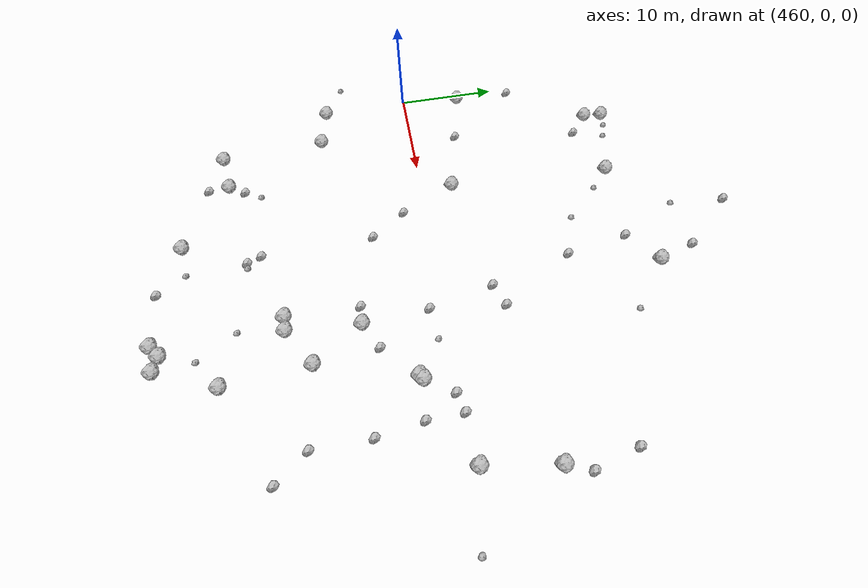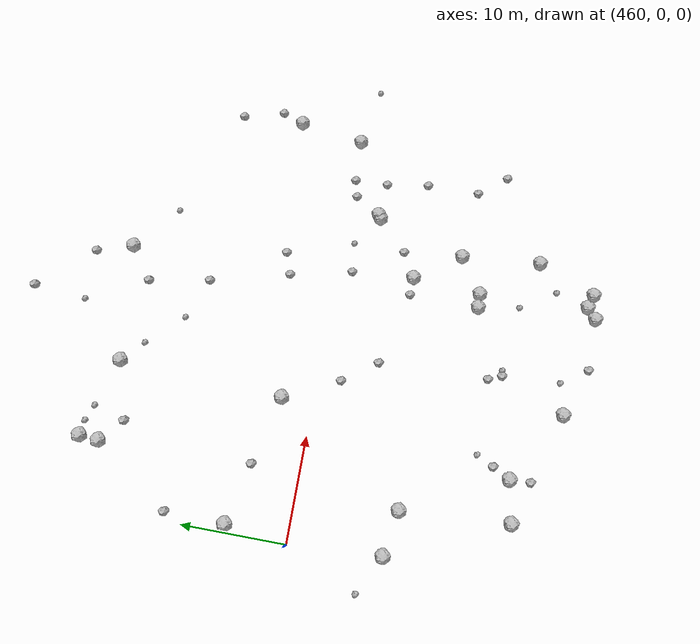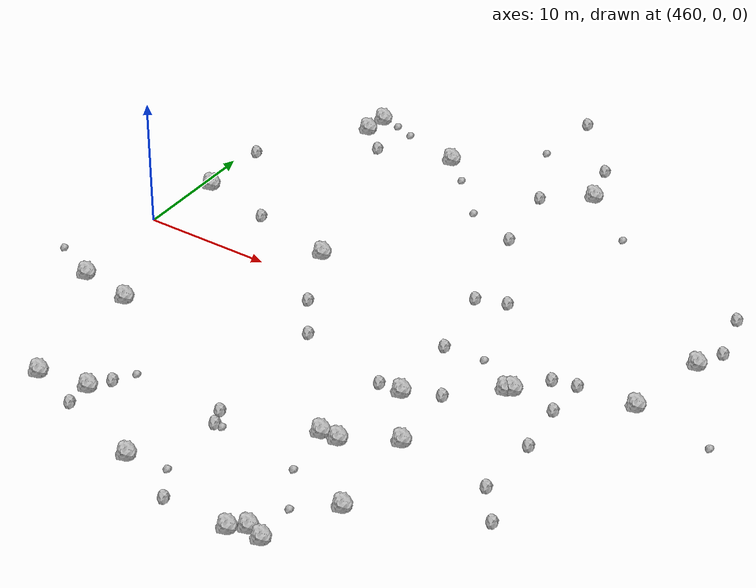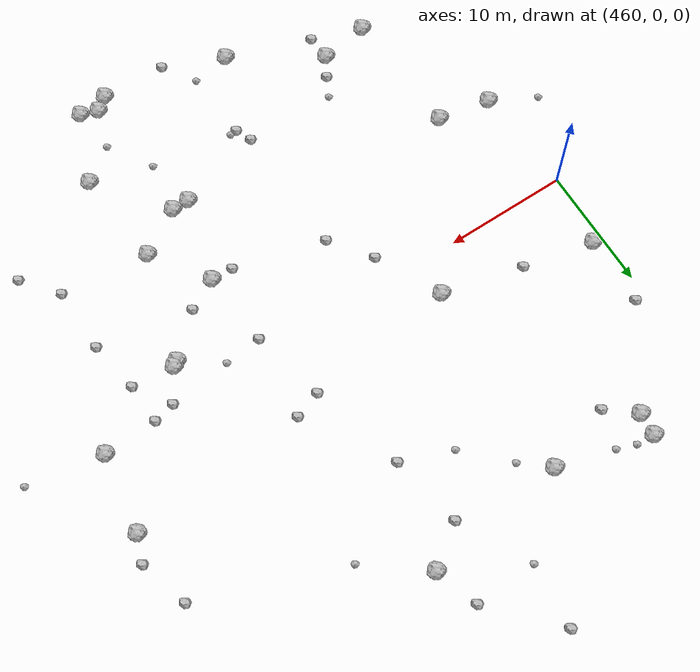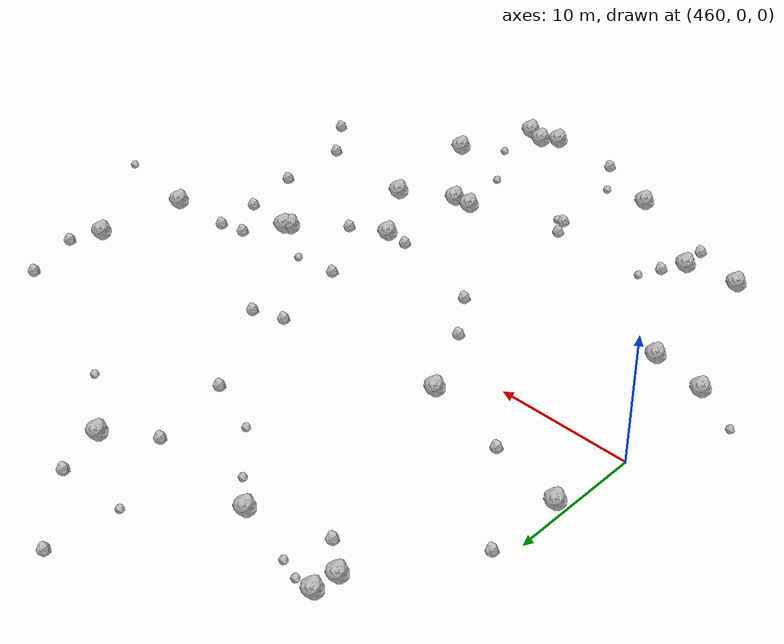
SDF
<sdf version="1.6">
 <world name="default">
  <include><uri>model://sun</uri></include>
  <model name="rock1_12_4">
   <include><uri>model://rock1</uri><pose>487.55239805862107 -7.692893516444993 0.5 0 0 0</pose></include>
  </model>
  <model name="rock1_12_5">
   <include><uri>model://rock1</uri><pose>466.3679996286498 21.18988112492619 0.5 0 0 0</pose></include>
  </model>
  <model name="rock1_12_6">
   <include><uri>model://rock1</uri><pose>473.2917575807927 3.0398310028277535 0.5 0 0 0</pose></include>
  </model>
  <model name="rock1_12_7">
   <include><uri>model://rock1</uri><pose>493.74443068052767 -3.1825100856199775 0.5 0 0 0</pose></include>
  </model>
  <model name="rock1_12_8">
   <include><uri>model://rock1</uri><pose>460.6409361872541 -8.719246508379253 0.5 0 0 0</pose></include>
  </model>
  <model name="rock1_12_9">
   <include><uri>model://rock1</uri><pose>476.34148830746676 -23.68961881391424 0.5 0 0 0</pose></include>
  </model>
  <model name="rock1_12_10">
   <include><uri>model://rock1</uri><pose>490.659325046263 -12.237253596048127 0.5 0 0 0</pose></include>
  </model>
  <model name="rock1_12_11">
   <include><uri>model://rock1</uri><pose>491.3172100040689 -20.079800897706274 0.5 0 0 0</pose></include>
  </model>
  <model name="rock1_12_12">
   <include><uri>model://rock1</uri><pose>493.3387717519589 -3.4502849593836302 0.5 0 0 0</pose></include>
  </model>
  <model name="rock1_12_13">
   <include><uri>model://rock1</uri><pose>502.79090659250926 6.455164802468786 0.5 0 0 0</pose></include>
  </model>
  <model name="rock1_12_14">
   <include><uri>model://rock1</uri><pose>501.6751220269182 -0.06749047878220082 0.5 0 0 0</pose></include>
  </model>
  <model name="rock1_12_15">
   <include><uri>model://rock1</uri><pose>487.00181435887896 -14.44119645953792 0.5 0 0 0</pose></include>
  </model>
  <model name="rock1_12_16">
   <include><uri>model://rock1</uri><pose>485.93237763333883 20.841527160231223 0.5 0 0 0</pose></include>
  </model>
  <model name="rock1_12_17">
   <include><uri>model://rock1</uri><pose>460.8729568082505 5.956183051573731 0.5 0 0 0</pose></include>
  </model>
  <model name="rock1_12_18">
   <include><uri>model://rock1</uri><pose>469.43168511236297 -19.285222914413268 0.5 0 0 0</pose></include>
  </model>
  <model name="rock1_12_19">
   <include><uri>model://rock1</uri><pose>466.2065663692537 19.308160411468727 0.5 0 0 0</pose></include>
  </model>
  <model name="rock1_12_20">
   <include><uri>model://rock1</uri><pose>465.52308287851577 -19.861155606375505 0.5 0 0 0</pose></include>
  </model>
  <model name="rock1_12_21">
   <include><uri>model://rock1</uri><pose>474.10740600368035 19.189723469651888 0.5 0 0 0</pose></include>
  </model>
  <model name="rock1_12_22">
   <include><uri>model://rock1</uri><pose>488.8887825956474 -25.653113624728046 0.5 0 0 0</pose></include>
  </model>
  <model name="rock1_12_23">
   <include><uri>model://rock1</uri><pose>487.50355540173166 -25.16673482564824 0.5 0 0 0</pose></include>
  </model>
  <model name="rock1_12_24">
   <include><uri>model://rock1</uri><pose>464.86324588433786 -9.559715838997786 0.5 0 0 0</pose></include>
  </model>
  <model name="rock1_12_25">
   <include><uri>model://rock1</uri><pose>486.4223302113249 -25.99764272576305 0.5 0 0 0</pose></include>
  </model>
  <model name="rock1_12_26">
   <include><uri>model://rock1</uri><pose>485.59555301429873 -14.45277637668038 0.5 0 0 0</pose></include>
  </model>
  <model name="rock2_12_0">
   <include><uri>model://rock2</uri><pose>460.93443020679234 11.726911001734052 0.3 0 0 0</pose></include>
  </model>
  <model name="rock2_12_1">
   <include><uri>model://rock2</uri><pose>502.53867005646237 12.805234702565528 0.3 0 0 0</pose></include>
  </model>
  <model name="rock2_12_2">
   <include><uri>model://rock2</uri><pose>475.891884194431 -2.303508128256663 0.3 0 0 0</pose></include>
  </model>
  <model name="rock2_12_3">
   <include><uri>model://rock2</uri><pose>478.5587616806922 -16.285106162471145 0.3 0 0 0</pose></include>
  </model>
  <model name="rock2_12_4">
   <include><uri>model://rock2</uri><pose>466.60499005450197 4.666509668659046 0.3 0 0 0</pose></include>
  </model>
  <model name="rock2_12_5">
   <include><uri>model://rock2</uri><pose>497.27036751716696 -3.564949451857956 0.3 0 0 0</pose></include>
  </model>
  <model name="rock2_12_6">
   <include><uri>model://rock2</uri><pose>487.9911484537188 5.3575822020647195 0.3 0 0 0</pose></include>
  </model>
  <model name="rock2_12_7">
   <include><uri>model://rock2</uri><pose>490.1150762166841 -6.397479385576297 0.3 0 0 0</pose></include>
  </model>
  <model name="rock2_12_8">
   <include><uri>model://rock2</uri><pose>497.1905038594373 -0.24923929627550123 0.3 0 0 0</pose></include>
  </model>
  <model name="rock2_12_9">
   <include><uri>model://rock2</uri><pose>469.5249997596249 -21.309955104824752 0.3 0 0 0</pose></include>
  </model>
  <model name="rock2_12_10">
   <include><uri>model://rock2</uri><pose>470.3590105274561 -17.706488101376166 0.3 0 0 0</pose></include>
  </model>
  <model name="rock2_12_11">
   <include><uri>model://rock2</uri><pose>481.15437312075903 -25.81135475158642 0.3 0 0 0</pose></include>
  </model>
  <model name="rock2_12_12">
   <include><uri>model://rock2</uri><pose>500.1911038215908 -15.881568816000511 0.3 0 0 0</pose></include>
  </model>
  <model name="rock2_12_13">
   <include><uri>model://rock2</uri><pose>503.6726479180722 8.665736233307712 0.3 0 0 0</pose></include>
  </model>
  <model name="rock2_12_14">
   <include><uri>model://rock2</uri><pose>478.29145548981757 -5.621596066035856 0.3 0 0 0</pose></include>
  </model>
  <model name="rock2_12_15">
   <include><uri>model://rock2</uri><pose>485.733076828346 -7.62433823356956 0.3 0 0 0</pose></include>
  </model>
  <model name="rock2_12_16">
   <include><uri>model://rock2</uri><pose>497.9487652542828 -13.063045038102729 0.3 0 0 0</pose></include>
  </model>
  <model name="rock2_12_17">
   <include><uri>model://rock2</uri><pose>483.6726007973197 12.430127581186966 0.3 0 0 0</pose></include>
  </model>
  <model name="rock2_12_18">
   <include><uri>model://rock2</uri><pose>495.38352067778635 -0.6679569488425479 0.3 0 0 0</pose></include>
  </model>
  <model name="rock2_12_19">
   <include><uri>model://rock2</uri><pose>468.4192566432783 17.44687590902332 0.3 0 0 0</pose></include>
  </model>
  <model name="rock2_12_20">
   <include><uri>model://rock2</uri><pose>482.5969983407467 18.47942459108524 0.3 0 0 0</pose></include>
  </model>
  <model name="rock2_12_21">
   <include><uri>model://rock2</uri><pose>484.77056996350444 24.501919457435818 0.3 0 0 0</pose></include>
  </model>
  <model name="rock2_12_22">
   <include><uri>model://rock2</uri><pose>480.1233447962761 29.676215013023374 0.3 0 0 0</pose></include>
  </model>
  <model name="rock2_12_23">
   <include><uri>model://rock2</uri><pose>485.72636311685153 4.582028100235895 0.3 0 0 0</pose></include>
  </model>
  <model name="rock2_12_24">
   <include><uri>model://rock2</uri><pose>487.1026450041802 -1.542223661421641 0.3 0 0 0</pose></include>
  </model>
  <model name="rock2_12_25">
   <include><uri>model://rock2</uri><pose>497.93031838082754 -7.807514745894416 0.3 0 0 0</pose></include>
  </model>
  <model name="rock2_12_26">
   <include><uri>model://rock2</uri><pose>479.11418578821633 -17.60173968037624 0.3 0 0 0</pose></include>
  </model>
  <model name="rock3_12_0">
   <include><uri>model://rock3</uri><pose>476.2148461596423 17.30611924709614 0.2 0 0 0</pose></include>
  </model>
  <model name="rock3_12_1">
   <include><uri>model://rock3</uri><pose>467.7660401389706 21.103301881754476 0.2 0 0 0</pose></include>
  </model>
  <model name="rock3_12_2">
   <include><uri>model://rock3</uri><pose>488.51889326165417 -22.12169311286658 0.2 0 0 0</pose></include>
  </model>
  <model name="rock3_12_3">
   <include><uri>model://rock3</uri><pose>490.5695217700477 17.134151375418625 0.2 0 0 0</pose></include>
  </model>
  <model name="rock3_12_4">
   <include><uri>model://rock3</uri><pose>479.4064877038652 -23.27691224739963 0.2 0 0 0</pose></include>
  </model>
  <model name="rock3_12_5">
   <include><uri>model://rock3</uri><pose>471.1712041027663 -16.151369917455693 0.2 0 0 0</pose></include>
  </model>
  <model name="rock3_12_6">
   <include><uri>model://rock3</uri><pose>469.3159803500832 20.547705686144475 0.2 0 0 0</pose></include>
  </model>
  <model name="rock3_12_7">
   <include><uri>model://rock3</uri><pose>479.4488622372398 13.972129645166255 0.2 0 0 0</pose></include>
  </model>
  <model name="rock3_12_8">
   <include><uri>model://rock3</uri><pose>479.64857996792995 -17.60885831850244 0.2 0 0 0</pose></include>
  </model>
  <model name="rock3_12_9">
   <include><uri>model://rock3</uri><pose>456.95863951083214 -6.851746769082304 0.2 0 0 0</pose></include>
  </model>
  <model name="rock3_12_10">
   <include><uri>model://rock3</uri><pose>490.17768747375266 -1.2823704238771114 0.2 0 0 0</pose></include>
  </model>
  <model name="rock3_12_11">
   <include><uri>model://rock3</uri><pose>507.9833326723641 -1.2385885751388699 0.2 0 0 0</pose></include>
  </model>
  <model name="rock3_12_12">
   <include><uri>model://rock3</uri><pose>486.3179774182494 -18.621521659061962 0.2 0 0 0</pose></include>
  </model>
  <model name="rock3_12_13">
   <include><uri>model://rock3</uri><pose>479.56348363041747 24.297943632004085 0.2 0 0 0</pose></include>
  </model>
 </world>
</sdf>
